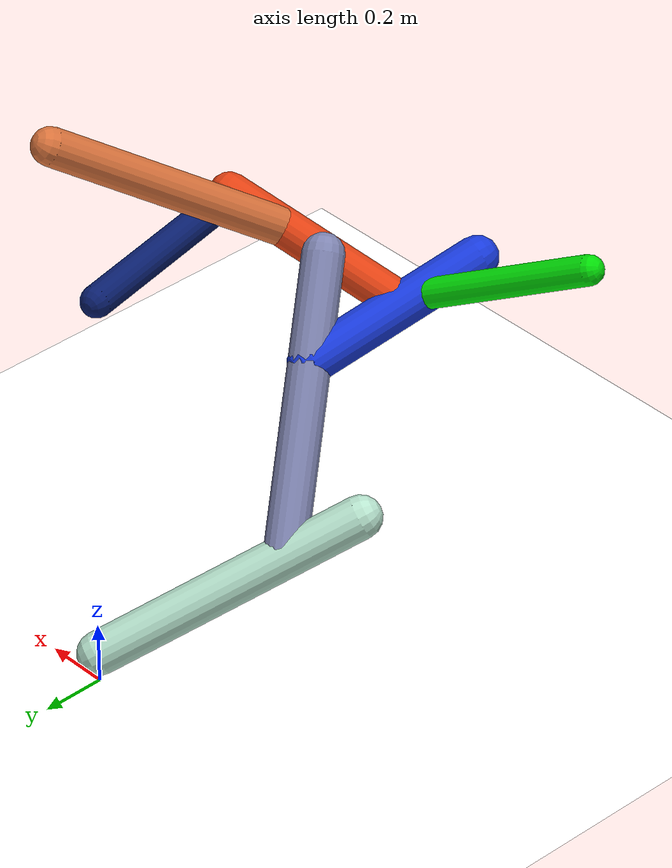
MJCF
<mujoco model="morphology">
  <option timestep="0.01"/>
  <default>
    <default class="/"/>
    <default class="0/"/>
    <default class="0/1/"/>
    <default class="0/1/2/"/>
    <default class="0/1/2/3/"/>
    <default class="0/1/2/3/4/"/>
    <default class="0/1/2/3/5/"/>
    <default class="0/1/2/6/"/>
  </default>
  <asset>
    <texture name="texplane" type="2d" builtin="checker" rgb1="0.10000000000000001 0.20000000000000001 0.29999999999999999" rgb2="0.20000000000000001 0.29999999999999999 0.40000000000000002" width="300" height="300"/>
    <material name="MatPlane" class="/" texture="texplane" texrepeat="20 20" specular="1" shininess="1" reflectance="0.5"/>
  </asset>
  <worldbody>
    <light name="//unnamed_light_0" class="/" directional="true" pos="0 0 1.5" dir="0 0 -1.3" cutoff="100" exponent="1" diffuse="1 1 1" specular="0.10000000000000001 0.10000000000000001 0.10000000000000001"/>
    <geom name="ground" class="/" type="plane" size="15 15 0.5" material="MatPlane" rgba="1 1 1 1"/>
    <site name="body" class="/" size="9.9999999999999995e-07 9.9999999999999995e-07 9.9999999999999995e-07" pos="0 0 0.10000000000000001"/>
    <body pos="0 0 0.10000000000000001" name="0/">
      <freejoint name="0/"/>
      <geom name="0/geom" class="0/" type="capsule" contype="1" conaffinity="1" condim="3" size="0.065696324044545423" rgba="0.71920348784657295 0.89367866814933328 0.80972631512596804 1" friction="0.59999999999999998 0.10000000000000001 0.10000000000000001" fromto="0 0 0 -0.40899442824257781 -0.65309076245106068 0.38663457323959127"/>
      <site name="0/end0" class="0/" size="0.0050000000000000001" pos="-0.40899442824257781 -0.65309076245106068 0.38663457323959127"/>
      <site name="0/attach1" class="0/" size="9.9999999999999995e-07 9.9999999999999995e-07 9.9999999999999995e-07" pos="-0.2906252399478863 -0.46407639429384329 0.27473666598034879"/>
      <body pos="-0.2906252399478863 -0.46407639429384329 0.27473666598034879" name="0/1/">
        <joint name="0/1/joint/" class="0/" type="hinge" axis="0 1 0" limited="true" range="-66.39957058370095 66.39957058370095"/>
        <geom name="0/1/geom" class="0/1/" type="capsule" contype="1" conaffinity="1" condim="3" size="0.064737477280349828" rgba="0.50158934895719254 0.52505547314114831 0.70098756958131991 1" friction="0.59999999999999998 0.10000000000000001 0.10000000000000001" fromto="0 0 0 0.37196418617854654 -0.49560567612044704 0.63922816190651455"/>
        <site name="0/1/end1" class="0/1/" size="0.0050000000000000001" pos="0.37196418617854654 -0.49560567612044704 0.63922816190651455"/>
        <site name="0/1/attach2" class="0/1/" size="9.9999999999999995e-07 9.9999999999999995e-07 9.9999999999999995e-07" pos="0.2374113230683742 -0.31632722627622101 0.40799627840499736"/>
        <body pos="0.2374113230683742 -0.31632722627622101 0.40799627840499736" name="0/1/2/">
          <joint name="0/1/2/joint/" class="0/1/" type="hinge" axis="5.5511151231257827e-17 0.79029300935247981 0.61272910765574151" limited="true" range="-37.336632023208864 37.336632023208864"/>
          <geom name="0/1/2/geom" class="0/1/2/" type="capsule" contype="1" conaffinity="1" condim="3" size="0.066086016916074852" rgba="0.097223984656236606 0.23216824690233162 0.86792287434259352 1" friction="0.59999999999999998 0.10000000000000001 0.10000000000000001" fromto="0 0 0 -0.12547714229210005 -0.54965317548786874 0.17919817111342629"/>
          <site name="0/1/2/end2" class="0/1/2/" size="0.0050000000000000001" pos="-0.12547714229210005 -0.54965317548786874 0.17919817111342629"/>
          <site name="0/1/2/attach3" class="0/1/2/" size="9.9999999999999995e-07 9.9999999999999995e-07 9.9999999999999995e-07" pos="-0.069839026205197968 -0.30593016246182375 0.099739486728030666"/>
          <body pos="-0.069839026205197968 -0.30593016246182375 0.099739486728030666" name="0/1/2/3/">
            <geom name="0/1/2/3/geom" class="0/1/2/3/" type="capsule" contype="1" conaffinity="1" condim="3" size="0.060553299787601489" rgba="0.88973156352881733 0.2593731886965257 0.075882122703973098 1" friction="0.59999999999999998 0.10000000000000001 0.10000000000000001" fromto="0 0 0 0.58940731101660537 0.14599052169776661 0.16882304823104799"/>
            <site name="0/1/2/3/end3" class="0/1/2/3/" size="0.0050000000000000001" pos="0.58940731101660537 0.14599052169776661 0.16882304823104799"/>
            <site name="0/1/2/3/attach4" class="0/1/2/3/" size="9.9999999999999995e-07 9.9999999999999995e-07 9.9999999999999995e-07" pos="0.40124979027107882 0.099385713610776527 0.11492937299809602"/>
            <body pos="0.40124979027107882 0.099385713610776527 0.11492937299809602" name="0/1/2/3/4/">
              <joint name="0/1/2/3/4/joint/" class="0/1/2/3/" type="hinge" axis="0 -0.75640440631655503 0.65410425323865617" limited="true" range="-38.788516899541179 38.788516899541179"/>
              <geom name="0/1/2/3/4/geom" class="0/1/2/3/4/" type="capsule" contype="1" conaffinity="1" condim="3" size="0.058229537325974912" rgba="0.85407394076490617 0.45220535694531105 0.23641008829782728 1" friction="0.59999999999999998 0.10000000000000001 0.10000000000000001" fromto="0 0 0 0.28730614480051297 0.64000676303168036 0.42861339454797376"/>
              <site name="0/1/2/3/4/end4" class="0/1/2/3/4/" size="0.0050000000000000001" pos="0.28730614480051297 0.64000676303168036 0.42861339454797376"/>
            </body>
            <site name="0/1/2/3/attach5" class="0/1/2/3/" size="9.9999999999999995e-07 9.9999999999999995e-07 9.9999999999999995e-07" pos="0.5779040762918185 0.14314128110082364 0.16552819403691493"/>
            <body pos="0.5779040762918185 0.14314128110082364 0.16552819403691493" name="0/1/2/3/5/">
              <geom name="0/1/2/3/5/geom" class="0/1/2/3/5/" type="capsule" contype="1" conaffinity="1" condim="3" size="0.049324115706235155" rgba="0.035632848672349171 0.11653683858492414 0.42712742760246336 1" friction="0.59999999999999998 0.10000000000000001 0.10000000000000001" fromto="0 0 0 -0.12338267634259137 0.63642701164672943 -0.021541790621682377"/>
              <site name="0/1/2/3/5/end5" class="0/1/2/3/5/" size="0.0050000000000000001" pos="-0.12338267634259137 0.63642701164672943 -0.021541790621682377"/>
            </body>
          </body>
          <site name="0/1/2/attach6" class="0/1/2/" size="9.9999999999999995e-07 9.9999999999999995e-07 9.9999999999999995e-07" pos="-0.080163079818691918 -0.35115472487139676 0.11448361854534854"/>
          <body pos="-0.080163079818691918 -0.35115472487139676 0.11448361854534854" name="0/1/2/6/">
            <joint name="0/1/2/6/joint/" class="0/1/2/" type="hinge" axis="0.97724739823050177 -0.20165624574032814 0.065744058329494717" limited="true" range="-68.349568400655869 68.349568400655869"/>
            <geom name="0/1/2/6/geom" class="0/1/2/6/" type="capsule" contype="1" conaffinity="1" condim="3" size="0.046326556549203597" rgba="0.0082246471000004817 0.86787320506030385 0.025035942962547408 1" friction="0.59999999999999998 0.10000000000000001 0.10000000000000001" fromto="0 0 0 -0.49915833215759753 -0.19833775815921295 0.2475722767196864"/>
            <site name="0/1/2/6/end6" class="0/1/2/6/" size="0.0050000000000000001" pos="-0.49915833215759753 -0.19833775815921295 0.2475722767196864"/>
          </body>
        </body>
      </body>
      <camera name="0/iso" class="0/" mode="trackcom" pos="-2.2999999999999998 -2.2999999999999998 1" xyaxes="0.45000000000000001 -0.45000000000000001 0 0.29999999999999999 0.14999999999999999 0.93999999999999995"/>
    </body>
  </worldbody>
  <actuator>
    <motor name="0/1/motor" class="0/1/" ctrllimited="true" ctrlrange="-1 1" gear="96" joint="0/1/joint/"/>
    <motor name="0/1/2/motor" class="0/1/2/" ctrllimited="true" ctrlrange="-1 1" gear="87" joint="0/1/2/joint/"/>
    <motor name="0/1/2/3/4/motor" class="0/1/2/3/4/" ctrllimited="true" ctrlrange="-1 1" gear="72" joint="0/1/2/3/4/joint/"/>
    <motor name="0/1/2/6/motor" class="0/1/2/6/" ctrllimited="true" ctrlrange="-1 1" gear="90" joint="0/1/2/6/joint/"/>
  </actuator>
  <sensor>
    <subtreelinvel name="velocity" body="0/"/>
  </sensor>
</mujoco>
